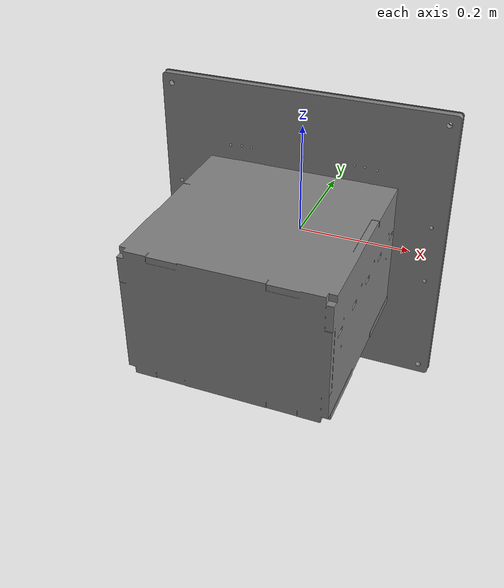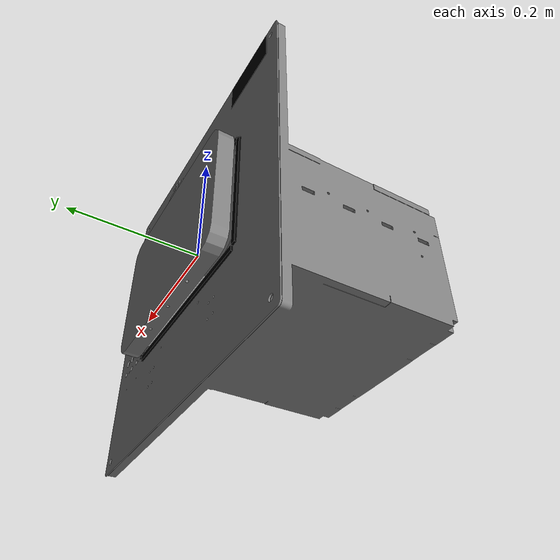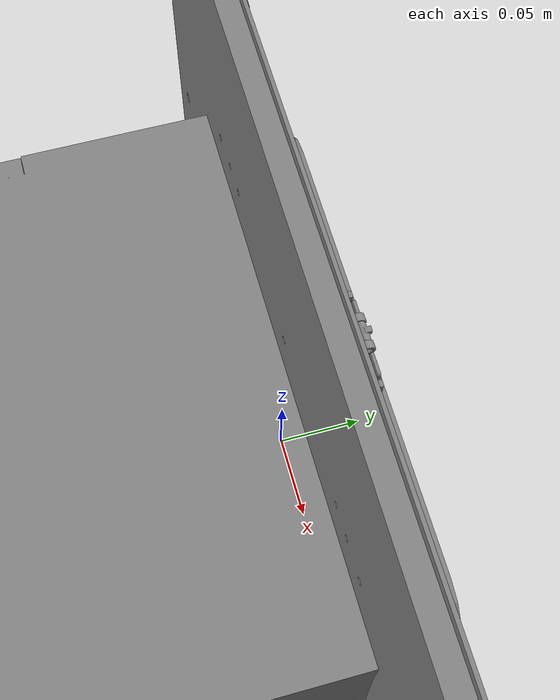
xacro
<?xml version="1.0"?>
<robot xmlns:xacro="http://ros.org/wiki/xacro" name="merlin_mockup">

  <link name="world" />

  <xacro:include filename="$(find merlin_mockup_description)/urdf/merlin_mockup.xacro"/>
  <xacro:merlin_mockup prefix="" parent="world">
    <origin xyz="0 0 0" rpy="0 0 0"/>
  </xacro:merlin_mockup>

</robot>

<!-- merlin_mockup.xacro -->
<robot xmlns:xacro="http://ros.org/wiki/xacro" name="merlin_mockup">

  <xacro:macro name="merlin_mockup" params="
    prefix:=''
    parent:=''
    *origin">

  <joint name="${prefix}merlin_freezer_joint" type="fixed">
    <parent link="${parent}"/>
    <child link="${prefix}wood_frame"/>
    <xacro:insert_block name="origin"/>
  </joint>

  <link name="${prefix}wood_frame">
    <visual>
      <geometry>
        <mesh filename="package://merlin_mockup_description/meshes/visual/aso_locker_cavity_only.stl" scale="0.02527 0.02527 0.02527"/>
      </geometry>
      <material name="Gray">
        <color rgba="0.5 0.5 0.5 1.0"/>
      </material>
    </visual>
    <collision>
      <geometry>
        <mesh filename="package://merlin_mockup_description/meshes/visual/aso_locker_cavity_only.stl" scale="0.02527 0.02527 0.02527"/>
      </geometry>
    </collision>
  </link>

  <link name="${prefix}csm_faceplate_cover">
    <visual>
      <geometry>
        <mesh filename="package://merlin_mockup_description/meshes/visual/csm_faceplate_cover.stl"/>
      </geometry>
      <material name="Gray">
        <color rgba="0.5 0.5 0.5 1.0"/>
      </material>
    </visual>
    <collision>
      <geometry>
        <mesh filename="package://merlin_mockup_description/meshes/visual/csm_faceplate_cover.stl"/>
      </geometry>
    </collision>
  </link>

  <joint name="${prefix}faceplate_cover_joint" type="fixed">
    <parent link="wood_frame"/>
    <child link="csm_faceplate_cover"/>
    <origin xyz="0.0 0.013 0.0" rpy="${pi/2} 0 ${pi}"/>
  </joint>

  <link name="${prefix}door_face">
  </link>

  <joint name="${prefix}door_face_joint" type="fixed">
    <parent link="csm_faceplate_cover"/>
    <child link="door_face"/>
    <origin xyz="0.0 0.0 0.0381" rpy="0 0 0"/>
  </joint>

  <!-- Seal section-->
  <!-- Replace visual and collision components of this link with stl eventually-->
  <link name="${prefix}seal">
    <inertial>
      <origin rpy="0 0 0" xyz="0.0 0.0 0.0"/>
      <mass value="0.1"/>
      <inertia ixx="0.01" ixy="0.0" ixz="0.0" iyy="0.01" iyz="0.0" izz="0.01"/>
    </inertial>
    <!-- Right-->
    <visual>
      <geometry>
        <box size="0.0091 0.201 0.005"/>
      </geometry>
      <material name="Cyan">
        <color rgba="0.0 0.0 0.0 1.0"/>
      </material>
      <origin rpy ="0 0 0" xyz ="0.1554 0 0.0025"/>
    </visual>

    <collision>
      <geometry>
        <box size="0.0091 0.201 0.005"/>
      </geometry>
      <origin rpy ="0 0 0" xyz ="0.1554 0 0.0025"/>
    </collision>

    <!-- Left -->
    <visual>
      <geometry>
        <box size="0.0091 0.201 0.005"/>
      </geometry>
      <material name="Cyan">
        <color rgba="0.0 0.0 0.0 1.0"/>
      </material>
      <origin rpy ="0 0 0" xyz ="-0.1554 0 0.0025"/>
    </visual>

    <collision>
      <geometry>
        <box size="0.0091 0.201 0.005"/>
      </geometry>
      <origin rpy ="0 0 0" xyz ="-0.1554 0 0.0025"/>
    </collision>

    <!-- Top-->
    <visual>
      <geometry>
        <box size="0.302 0.0091 0.005"/>
      </geometry>
      <material name="Cyan">
        <color rgba="0.0 0.0 0.0 1.0"/>
      </material>
      <origin xyz="0 0.1045 0.0025" rpy="0 0 0"/>
    </visual>

    <collision>
      <geometry>
        <box size="0.302 0.0091 0.005"/>
      </geometry>
      <origin xyz="0 0.1045 0.0025" rpy="0 0 0"/>
    </collision>

    <!-- Bottom -->
    <visual>
      <geometry>
        <box size="0.302 0.0091 0.005"/>
      </geometry>
      <material name="Cyan">
        <color rgba="0.0 0.0 0.0 1.0"/>
      </material>
      <origin xyz="0 -0.1045 0.0025" rpy="0 0 0"/>
    </visual>

    <collision>
      <geometry>
        <box size="0.302 0.0091 0.005"/>
      </geometry>
      <origin xyz="0 -0.1045 0.0025" rpy="0 0 0"/>
    </collision>
  </link>

  <joint name="${prefix}seal_to_face_joint" type="fixed">
    <parent link="csm_faceplate_cover"/>
    <child link="seal"/>
    <!-- Seal does not appear to be perfectly centered - introduce offsets -->
    <origin xyz="-0.001 -0.0015 0" rpy="0 0 0"/>
  </joint>

  <!-- Seal corners to help with cartesian waypoints - keep and modify these once above geometry is replaced with an stl -->
  <link name="${prefix}seal_corner_1"/>
  <joint name="${prefix}c1_to_seal" type="fixed">
    <parent link="seal"/>
    <child link="seal_corner_1"/>
    <origin rpy ="-1.57 1.57 0" xyz ="-0.1554 0.1105 0.005"/>
  </joint>
  <link name="${prefix}seal_corner_2"/>
  <joint name="${prefix}c2_to_seal" type="fixed">
    <parent link="seal"/>
    <child link="seal_corner_2"/>
    <origin rpy ="-1.57 1.57 0" xyz ="0.1654 0.1105 0.005"/>
  </joint>
  <link name="${prefix}seal_corner_3"/>
  <joint name="${prefix}c3_to_seal" type="fixed">
    <parent link="seal"/>
    <child link="seal_corner_3"/>
    <origin rpy ="-1.57 1.57 0" xyz ="0.1654 -0.1005 0.005"/>
  </joint>
  <link name="${prefix}seal_corner_4"/>
  <joint name="${prefix}c4_to_seal" type="fixed">
    <parent link="seal"/>
    <child link="seal_corner_4"/>
    <origin rpy ="-1.57 1.57 0" xyz ="-0.1554 -0.1005 0.005"/>
  </joint>

  <!-- Velcro section-->
  <link name="${prefix}velcro"> <!-- need to set all values -->
    <visual>
      <geometry>
        <box size="0.11 0.001 0.05"/>
      </geometry>
      <material name="Cyan">
        <color rgba="0.0 0.0 0.0 1.0"/>
      </material>
    </visual>

    <collision>
      <geometry>
        <box size="0.11 0.001 0.05"/>
      </geometry>
    </collision>
  </link>

  <joint name="${prefix}velcro_to_frame_joint" type="fixed">
    <parent link="wood_frame"/>
    <child link="velcro"/>
    <origin xyz="-0.17535 0.015 0.2345" rpy="0 0 0"/>
  </joint>

  <!-- Door section-->
  <link name="${prefix}door">
    <inertial>
      <origin rpy="0 0 0" xyz="0.0 0.0 0.0"/>
      <mass value="0.1"/>
      <inertia ixx="0.01" ixy="0.0" ixz="0.0" iyy="0.01" iyz="0.0" izz="0.01"/>
    </inertial>
    <visual>
      <origin xyz="0 0 0.110" rpy="${pi/2} 0 ${pi}"/>
      <geometry>
        <mesh filename="package://merlin_mockup_description/meshes/visual/csm_outer_door.stl"/>
      </geometry>
      <material name="Gray">
        <color rgba="0.5 0.5 0.5 1.0"/>
      </material>
    </visual>
    <collision>
      <origin xyz="0 0 0.110" rpy="${pi/2} 0 ${pi}"/>
      <geometry>
        <mesh filename="package://merlin_mockup_description/meshes/visual/csm_outer_door.stl"/>
      </geometry>
    </collision>
  </link>

  <joint name="${prefix}door_to_frame_joint" type="revolute">
    <parent link="wood_frame"/>
    <child link="door"/>
    <origin xyz="0 0.0255 -0.113" rpy="0 0 0"/>
    <axis xyz="1 0 0" />
    <limit effort="10" velocity="10" lower="-${pi/2}" upper="0"/>
  </joint>

  <!-- Latch housing section-->
  <link name="${prefix}latch_housing">
    <inertial>
      <origin rpy="0 0 0" xyz="0.0 0.0 0.0"/>
      <mass value="0.1"/>
      <inertia ixx="0.01" ixy="0.0" ixz="0.0" iyy="0.01" iyz="0.0" izz="0.01"/>
    </inertial>
    <visual>
      <origin xyz="0 0 0" rpy="0 ${pi} 0"/>
      <geometry>
        <mesh filename="package://merlin_mockup_description/meshes/visual/csm_latch_housing.stl"/>
      </geometry>
      <material name="Gray">
        <color rgba="0.5 0.5 0.5 1.0"/>
      </material>
    </visual>
    <collision>
       <origin xyz="0 0 0" rpy="0 ${pi} 0"/>
      <geometry>
        <mesh filename="package://merlin_mockup_description/meshes/visual/csm_latch_housing.stl"/>
      </geometry>
    </collision>
  </link>

  <joint name="${prefix}door_to_latch" type="fixed">
    <parent link="door"/>
    <child link="latch_housing"/>
    <origin xyz="0 0.0 0.233" rpy="0 0 0"/>
  </joint>

  <!-- Latch cover section-->
  <link name="${prefix}latch_cover">
    <inertial>
      <origin rpy="0 0 0" xyz="0.0 0.0 0.0"/>
      <mass value="0.1"/>
      <inertia ixx="0.01" ixy="0.0" ixz="0.0" iyy="0.01" iyz="0.0" izz="0.01"/>
    </inertial>
    <visual>
      <origin xyz="0 0 0" rpy="0 0 0"/>
      <geometry>
        <mesh filename="package://merlin_mockup_description/meshes/visual/csm_latch_cover.stl"/>
      </geometry>
      <material name="Gray">
        <color rgba="0.5 0.5 0.5 1.0"/>
      </material>
    </visual>
    <collision>
      <origin xyz="0 0 0" rpy="0 0 0"/>
      <geometry>
        <mesh filename="package://merlin_mockup_description/meshes/visual/csm_latch_cover.stl"/>
      </geometry>
    </collision>
  </link>

  <joint name="${prefix}housing_to_cover" type="fixed">
    <parent link="latch_housing"/>
    <child link="latch_cover"/>
    <origin xyz="0 0.012 0.0" rpy="0 0 0"/>
  </joint>

  <!-- Right latch pull section-->
  <link name="${prefix}right_latch_pull">
    <inertial>
      <origin rpy="0 0 0" xyz="0.0 0.0 0.0"/>
      <mass value="0.1"/>
      <inertia ixx="0.01" ixy="0.0" ixz="0.0" iyy="0.01" iyz="0.0" izz="0.01"/>
    </inertial>
    <visual>
      <origin xyz="0 0 0" rpy="${pi} -${pi/2} -${pi/2}"/>
      <geometry>
        <mesh filename="package://merlin_mockup_description/meshes/visual/csm_latch_pull.stl"/>
      </geometry>
      <material name="Gray">
        <color rgba="0.5 0.5 0.5 1.0"/>
      </material>
    </visual>
    <collision>
      <origin xyz="0 0 0" rpy="${pi} -${pi/2} -${pi/2}"/>
      <geometry>
        <mesh filename="package://merlin_mockup_description/meshes/visual/csm_latch_pull.stl"/>
      </geometry>
    </collision>
  </link>

  <joint name="${prefix}housing_to_right_latch_pull" type="prismatic">
    <parent link="latch_housing"/>
    <child link="right_latch_pull"/>
    <origin xyz="0.0258 0.01 -0.004" rpy="0 0 0"/>
    <axis xyz="1 0 0" />
    <limit effort="10" velocity="10" lower="-0.0084" upper="0"/>
  </joint>

  <!-- Left latch pull section-->
  <link name="${prefix}left_latch_pull">
    <inertial>
      <origin rpy="0 0 0" xyz="0.0 0.0 0.0"/>
      <mass value="0.1"/>
      <inertia ixx="0.01" ixy="0.0" ixz="0.0" iyy="0.01" iyz="0.0" izz="0.01"/>
    </inertial>
    <visual>
      <origin xyz="0 0 0" rpy="0 ${pi/2} -${pi/2}"/>
      <geometry>
        <mesh filename="package://merlin_mockup_description/meshes/visual/csm_latch_pull.stl"/>
      </geometry>
      <material name="Gray">
        <color rgba="0.5 0.5 0.5 1.0"/>
      </material>
    </visual>
    <collision>
      <origin xyz="0 0 0" rpy="0 ${pi/2} -${pi/2}"/>
      <geometry>
        <mesh filename="package://merlin_mockup_description/meshes/visual/csm_latch_pull.stl"/>
      </geometry>
    </collision>
  </link>

  <joint name="${prefix}housing_to_left_latch_pull" type="prismatic">
    <parent link="latch_housing"/>
    <child link="left_latch_pull"/>
    <origin xyz="-0.0258 0.01 -0.004" rpy="0 0 0"/>
    <axis xyz="1 0 0" />
    <limit effort="10" velocity="10" lower="0" upper="0.0084"/>
  </joint>

  <!-- Latch lock section-->
  <link name="${prefix}latch_lock">
    <inertial>
      <origin rpy="0 0 0" xyz="0.0 0.0 0.0"/>
      <mass value="0.1"/>
      <inertia ixx="0.01" ixy="0.0" ixz="0.0" iyy="0.01" iyz="0.0" izz="0.01"/>
    </inertial>
    <visual>
      <origin xyz="0 0.0012 -0.0084" rpy="0 0 0"/>
      <geometry>
        <mesh filename="package://merlin_mockup_description/meshes/visual/csm_latch_lock.stl"/>
      </geometry>
      <material name="Gray">
        <color rgba="0.5 0.5 0.5 1.0"/>
      </material>
    </visual>
    <collision>
      <origin xyz="0 0.0012 -0.0084" rpy="0 0 0"/>
      <geometry>
        <mesh filename="package://merlin_mockup_description/meshes/visual/csm_latch_lock.stl"/>
      </geometry>
    </collision>
  </link>

  <joint name="${prefix}housing_to_latch_lock" type="revolute">
    <parent link="latch_housing"/>
    <child link="latch_lock"/>
    <origin xyz="0 0.019 0.007" rpy="0 0 0"/>
    <axis xyz="1 0 0" />
    <limit effort="10" velocity="10" lower="0" upper="${pi/2}"/>
  </joint>

  </xacro:macro>

</robot>
